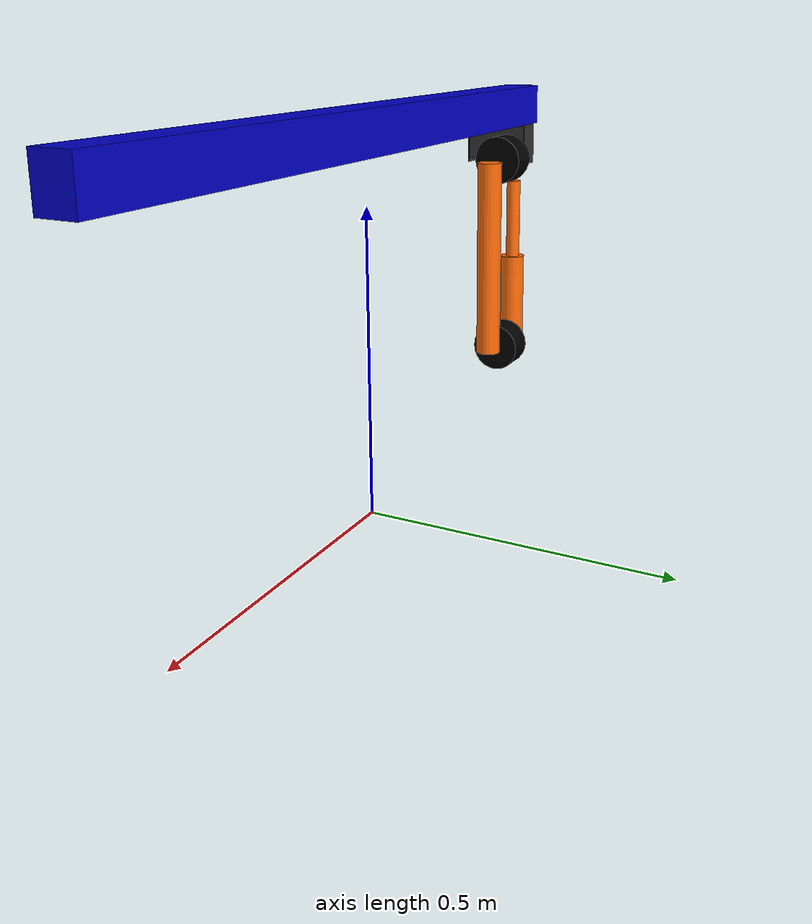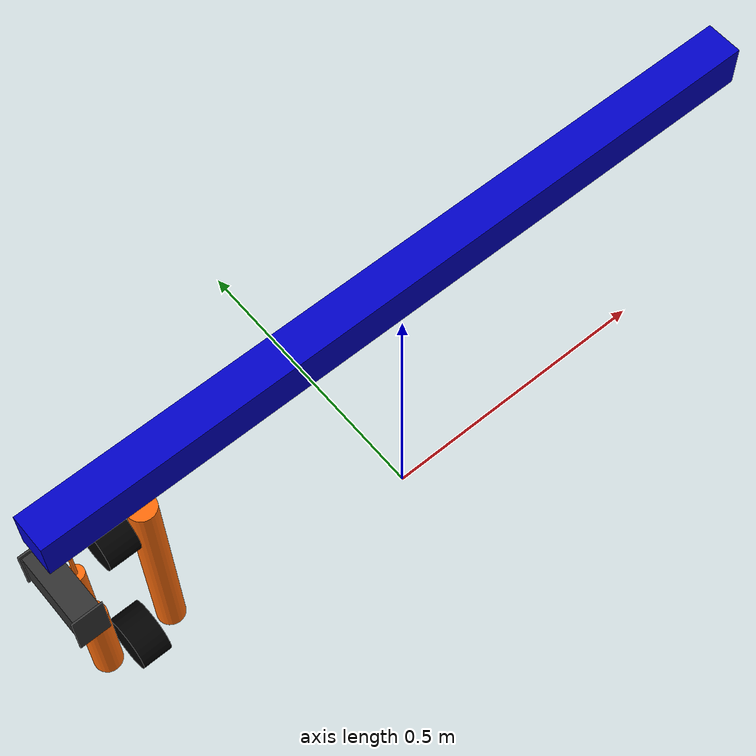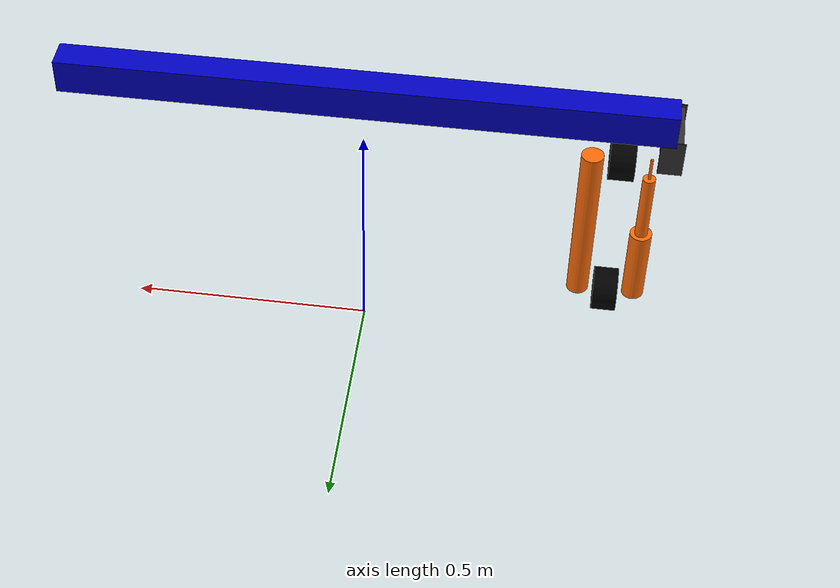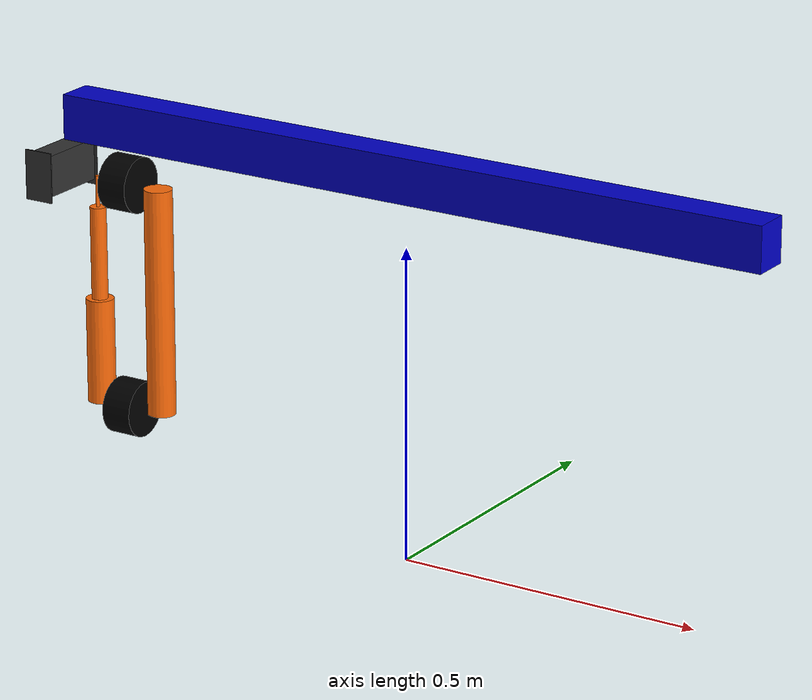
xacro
<?xml version="1.0"?>
<!-- Weed Control Unit Robot Arm -->
<robot xmlns:xacro="http://www.ros.org/wiki/xacro" name="ofa_robot">

  <!-- Arguments -->
  <xacro:arg name="use_mock_hardware" default="false" />
  <xacro:arg name="read_only" default="false" />

  <!-- Import robot macro -->
   <xacro:include filename="ofa_robot_description.urdf.xacro" />

  <!-- Import materials and inertia macros -->
  <xacro:include filename="materials.urdf.xacro" />

  <!-- Import ros2_control description -->
  <xacro:include filename="$(find ofa_description)/ros2_control/arm_2dof.ros2_control.xacro" />
  <xacro:include filename="$(find ofa_description)/ros2_control/linear_axis.ros2_control.xacro" />

  <!-- Load joint_limits -->
  <xacro:property name="joint_limits_file" value="$(find ofa_moveit_config)/config/joint_limits.yaml" />
  <xacro:property name="joint_limits" value="${xacro.load_yaml(joint_limits_file)['joint_limits']}"/>

  <!-- Used for fixing robot -->
  <link name="world"/>

  <xacro:weed_robot parent="world" />

  <xacro:arm_2dof_ros2_control
    name="arm_2dof" use_mock_hardware="$(arg use_mock_hardware)" read_only="$(arg read_only)" />
  <xacro:linear_axis_ros2_control
    name="linear_axis" use_mock_hardware="$(arg use_mock_hardware)" read_only="$(arg read_only)" />

</robot>

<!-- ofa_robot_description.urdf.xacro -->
<robot xmlns:xacro="http://www.ros.org/wiki/xacro">

  <xacro:macro name="weed_robot" params="parent">

    <!-- Axis dimensions (box) -->
    <xacro:property name="axis_l" value="1.216" />
    <xacro:property name="axis_w" value="0.06" />
    <xacro:property name="axis_h" value="0.072" />

    <!-- Distance between carriage hard stop and end of axis -->
    <xacro:property name="carriage_off" value="${axis_l-0.116-1}" />

    <!-- Distance between axis carriage and center of first motor -->
    <xacro:property name="attachment_off" value="${0.06+0.002}" />

    <!-- Distance between ground and carriage -->
    <xacro:property name="height" value="${0.65-axis_h}" />

    <!-- Distance between motor and tube -->
    <xacro:property name="tube_off" value="${0.01}" />

    <!-- Motor dimensions -->
    <xacro:property name="motor_r" value="${0.089/2}" />
    <xacro:property name="motor_h" value="0.05025" />

    <!-- Offset between center of motor and center of carriage in x-direction -->
    <xacro:property name="motor_off" value="${0.0026}" />

    <!-- Camera enclosure dimensions -->
    <xacro:property name="camera_shield_w" value="0.12" />
    <xacro:property name="camera_shield_h" value="0.08" />
    <xacro:property name="camera_shield_l" value="0.048" />
    <xacro:property name="camera_shield_wall" value="0.002" />

    <!-- Offset between camera enclosure and motor center -->
    <xacro:property name="camera_shield_off_x" value="${motor_h/2+0.04355}" />
    <xacro:property name="camera_shield_off_y" value="${0.044}" />

    <!-- Camera dimensions -->
    <xacro:property name="camera_w" value="0.11526" />
    <xacro:property name="camera_h" value="0.06525" />
    <xacro:property name="camera_l" value="0.04026" />
    <xacro:property name="camera_off_y" value="0.00045" />
    <xacro:property name="camera_off_z" value="0.00615" />

    <!-- Offset between camera and optical center of rgb camera -->
    <xacro:property name="color_off_y" value="0.03" />
    <xacro:property name="color_off_z" value="0.05659361" />

    <!-- Tube dimensions -->
    <xacro:property name="arm_r" value="${0.045/2}" />
    <xacro:property name="arm1_l" value="0.368" />
    <xacro:property name="arm2_l" value="0.17" />

    <!-- End effector dimensions -->
    <xacro:property name="end_base_r" value="0.013" />
    <xacro:property name="end_base_l" value="0.15" />
    <xacro:property name="end_tip_r" value="0.003" />
    <xacro:property name="end_tip_l" value="0.05" />

    <joint name="base_joint" type="fixed">
      <origin xyz="0 0 ${height}" rpy="0 0 0" />
      <parent link="${parent}" />
      <child link="base_link" />
    </joint>
    <link name="base_link">
      <visual>
        <origin xyz="0 0 ${axis_h/2}" rpy="0 0 0" />
        <geometry>
          <box size="${axis_l} ${axis_w} ${axis_h}" />
        </geometry>
        <material name="blue"/>
      </visual>
      <collision>
        <origin xyz="0 0 ${axis_h/2}" rpy="0 0 0" />
        <geometry>
          <box size="${axis_l} ${axis_w} ${axis_h}" />
        </geometry>
      </collision>
    </link>

    <joint name="joint1" type="prismatic">
      <origin xyz="${-axis_l/2+carriage_off-motor_off} 0 ${-attachment_off}" rpy="0 0 0" />
      <parent link="base_link" />
      <child link="link1" />
      <axis xyz="-1 0 0" />
      <limit lower="${joint_limits['joint1']['min_position']}" upper="${joint_limits['joint1']['max_position']}"
      velocity="${joint_limits['joint1']['max_velocity']}" effort="100" />
    </joint>

    <link name="link1">
      <visual>
        <origin xyz="0 0 0" rpy="0 ${pi/2} 0" />
        <geometry>
          <cylinder length="${motor_h}" radius="${motor_r}" />
        </geometry>
        <material name="black"/>
      </visual>
      <collision>
        <origin xyz="0 0 0" rpy="0 ${pi/2} 0" />
        <geometry>
          <cylinder length="${motor_h}" radius="${motor_r}" />
        </geometry>
      </collision>
    </link>

    <joint name="camera_shield_joint" type="fixed">
      <origin xyz="${-camera_shield_off_x-camera_shield_l/2} ${-camera_shield_off_y} ${attachment_off}" rpy="0 0 0" />
      <parent link="link1" />
      <child link="camera_shield_link" />
    </joint>

    <link name="camera_shield_link">
      <visual>
        <origin xyz="0 ${-camera_shield_w/2+camera_shield_wall/2} ${-camera_shield_h/2}" rpy="0 0 0" />
        <geometry>
          <box size="${camera_shield_l} ${camera_shield_wall} ${camera_shield_h}" />
        </geometry>
        <material name="grey"/>
      </visual>
      <visual>
        <origin xyz="0 ${camera_shield_w/2-camera_shield_wall/2} ${-camera_shield_h/2}" rpy="0 0 0" />
        <geometry>
          <box size="${camera_shield_l} ${camera_shield_wall} ${camera_shield_h}" />
        </geometry>
        <material name="grey"/>
      </visual>
      <collision>
        <origin xyz="0 ${-camera_shield_w/2+camera_shield_wall/2} ${-camera_shield_h/2}" rpy="0 0 0" />
        <geometry>
          <box size="${camera_shield_l} ${camera_shield_wall} ${camera_shield_h}" />
        </geometry>
        <material name="grey"/>
      </collision>
      <collision>
        <origin xyz="0 ${camera_shield_w/2-camera_shield_wall/2} ${-camera_shield_h/2}" rpy="0 0 0" />
        <geometry>
          <box size="${camera_shield_l} ${camera_shield_wall} ${camera_shield_h}" />
        </geometry>
        <material name="grey"/>
      </collision>
    </link>

    <joint name="camera_joint" type="fixed">
      <origin xyz="0 ${-camera_off_y} ${-camera_off_z}" rpy="0 0 0" />
      <parent link="camera_shield_link" />
      <child link="camera_link" />
    </joint>

    <link name="camera_link">
      <visual>
        <origin xyz="0 0 ${-camera_h/2}" rpy="0 0 0" />
        <geometry>
          <box size="${camera_l} ${camera_w} ${camera_h}" />
        </geometry>
        <material name="grey"/>
      </visual>
      <collision>
        <origin xyz="0 0 ${-camera_h/2}" rpy="0 0 0" />
        <geometry>
          <box size="${camera_l} ${camera_w} ${camera_h}" />
        </geometry>
        <material name="grey"/>
      </collision>
    </link>

    <joint name="camera_color_joint" type="fixed">
      <origin xyz="0 ${color_off_y} ${-color_off_z}" rpy="${pi} 0 ${pi/2}" />
      <parent link="camera_link" />
      <child link="camera_color_frame" />
    </joint>
    <link name="camera_color_frame" />

    <joint name="joint2" type="revolute">
      <origin xyz="${motor_h/2+tube_off+arm_r} 0 0" rpy="0 0 0" />
      <parent link="link1" />
      <child link="link2" />
      <axis xyz="1 0 0" />
      <limit lower="${joint_limits['joint2']['min_position']}" upper="${joint_limits['joint2']['max_position']}"
      velocity="${joint_limits['joint2']['max_velocity']}" effort="100" />
    </joint>

    <link name="link2">
      <visual>
        <origin xyz="0 0 ${-arm1_l/2}" rpy="0 0 0" />
        <geometry>
          <cylinder length="${arm1_l}" radius="${arm_r}" />
        </geometry>
        <material name="orange"/>
      </visual>
      <collision>
        <origin xyz="0 0 ${-arm1_l/2}" rpy="0 0 0" />
        <geometry>
          <cylinder length="${arm1_l}" radius="${arm_r}" />
        </geometry>
      </collision>
    </link>

    <joint name="joint2_motor" type="fixed">
      <origin xyz="${-motor_h/2-tube_off-arm_r} 0 ${-arm1_l}" rpy="0 0 0" />
      <parent link="link2" />
      <child link="link2_motor" />
    </joint>

    <link name="link2_motor">
      <visual>
        <origin xyz="0 0 0" rpy="0 ${pi/2} 0" />
        <geometry>
          <cylinder length="${motor_h}" radius="${motor_r}" />
        </geometry>
        <material name="black"/>
      </visual>
      <collision>
        <origin xyz="0 0 0" rpy="0 ${pi/2} 0" />
        <geometry>
          <cylinder length="${motor_h}" radius="${motor_r}" />
        </geometry>
      </collision>
    </link>

    <joint name="joint3" type="revolute">
      <origin xyz="${-motor_h/2-tube_off-arm_r} 0 0" rpy="${pi} 0 0" />
      <parent link="link2_motor" />
      <child link="link3" />
      <axis xyz="-1 0 0" />
      <limit lower="${joint_limits['joint3']['min_position']}" upper="${joint_limits['joint3']['max_position']}"
      velocity="${joint_limits['joint3']['max_velocity']}" effort="100" />
    </joint>

    <link name="link3">
      <visual>
        <origin xyz="0 0 ${-arm2_l/2}" rpy="0 0 0" />
        <geometry>
          <cylinder length="${arm2_l}" radius="${arm_r}" />
        </geometry>
        <material name="orange"/>
      </visual>
      <visual>
        <origin xyz="0 0 ${-arm2_l-end_base_l/2}" rpy="0 0 0" />
        <geometry>
          <cylinder length="${end_base_l}" radius="${end_base_r}" />
        </geometry>
        <material name="orange"/>
      </visual>
      <visual>
        <origin xyz="0 0 ${-arm2_l-end_base_l-end_tip_l/2}" rpy="0 0 0" />
        <geometry>
          <cylinder length="${end_tip_l}" radius="${end_tip_r}" />
        </geometry>
        <material name="orange"/>
      </visual>
      <collision>
        <origin xyz="0 0 ${-arm2_l/2}" rpy="0 0 0" />
        <geometry>
          <cylinder length="${arm2_l}" radius="${arm_r}" />
        </geometry>
      </collision>
      <collision>
        <origin xyz="0 0 ${-arm2_l-end_base_l/2}" rpy="0 0 0" />
        <geometry>
          <cylinder length="${end_base_l}" radius="${end_base_r}" />
        </geometry>
        <material name="orange"/>
      </collision>
      <collision>
        <origin xyz="0 0 ${-arm2_l-end_base_l-end_tip_l/2}" rpy="0 0 0" />
        <geometry>
          <cylinder length="${end_tip_l}" radius="${end_tip_r}" />
        </geometry>
        <material name="orange"/>
      </collision>
    </link>

    <joint name="joint3_end" type="fixed">
      <origin xyz="0 0 ${-arm2_l-end_base_l-end_tip_l}" rpy="0 0 0" />
      <parent link="link3" />
      <child link="eef_link" />
    </joint>
    <link name="eef_link" />

	</xacro:macro>

</robot>

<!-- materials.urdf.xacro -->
<robot>
  <material name="black">
    <color rgba="0 0 0 ${255/255}" />
  </material>
  <material name="dark_grey">
    <color rgba="0 0 ${155/255} ${255/255}" />
  </material>
  <material name="blue">
    <color rgba="0 0 ${200/255} ${255/255}" />
  </material>
  <material name="green">
    <color rgba="0 ${200/255} 0 ${255/255}" />
  </material>
  <material name="grey">
    <color rgba="${50/255} ${50/255} ${50/255} ${255/255}" />
  </material>
  <material name="orange">
    <color rgba="${255/255} ${108/255} ${10/255} ${255/255}" />
  </material>
  <material name="brown">
    <color rgba="${222/255} ${207/255} ${195/255} ${255/255}" />
  </material>
  <material name="red">
    <color rgba="${200/255} 0 0 ${255/255}" />
  </material>
  <material name="white">
    <color rgba="${255/255} ${255/255} ${255/255} ${255/255}" />
  </material>
</robot>
